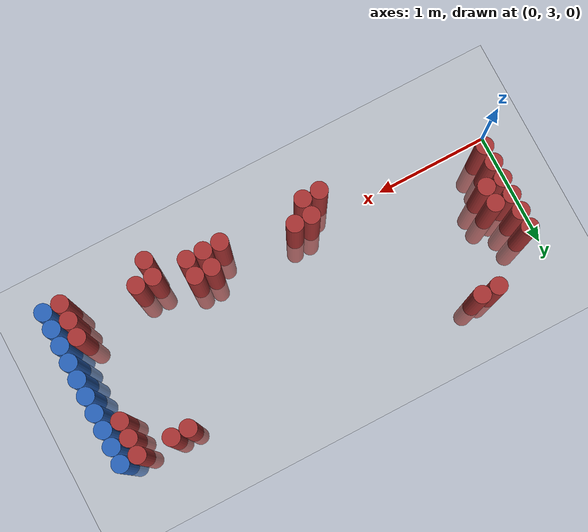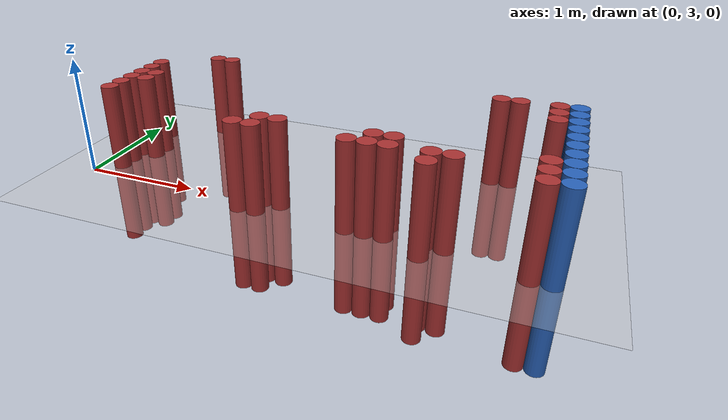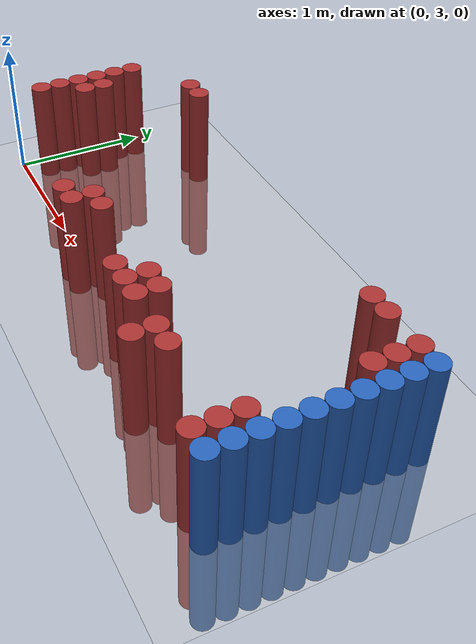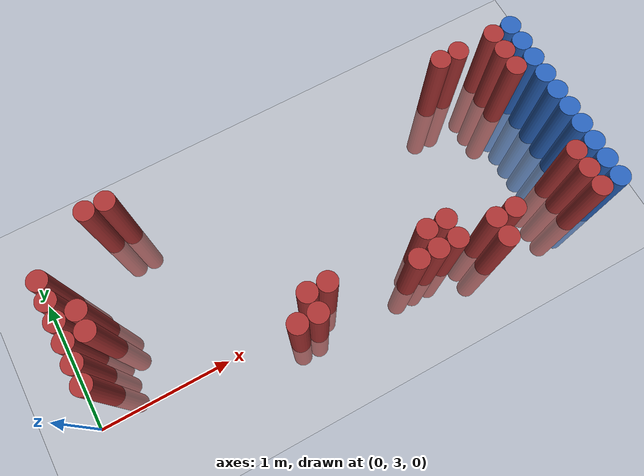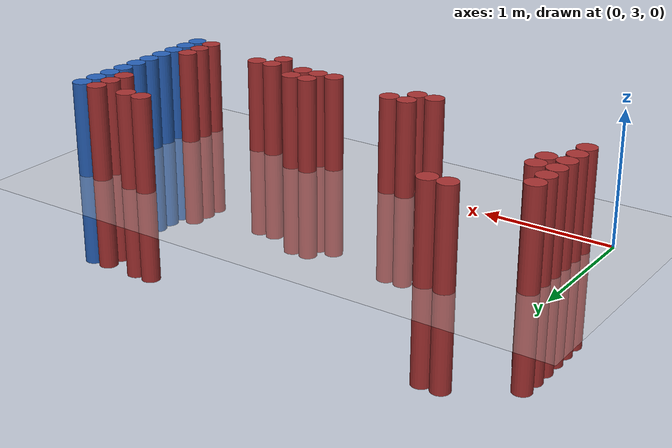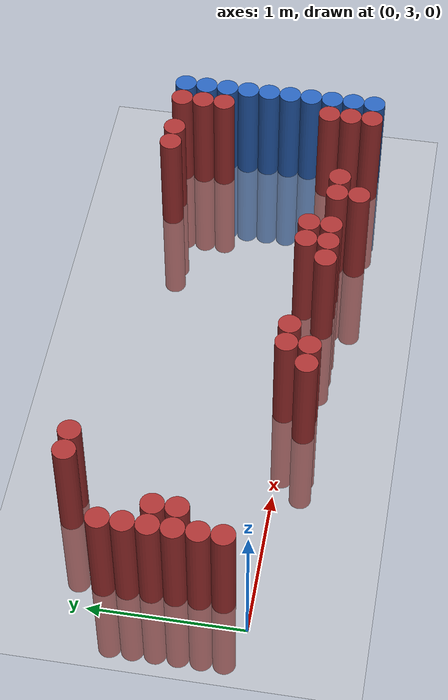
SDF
<sdf version="1.6">
 <world name="default">
  <model name="ground_plane">
   <static>1</static>
   <link name="link">
    <collision name="collision">
     <geometry><plane><normal>0 0 1</normal><size>100 100</size></plane></geometry>
     <surface><friction><ode><mu>100</mu><mu2>50</mu2></ode></friction></surface>
    </collision>
    <visual name="visual">
     <cast_shadows>0</cast_shadows>
     <geometry><plane><normal>0 0 1</normal><size>100 100</size></plane></geometry>
     <material>
      <script><uri>file://media/materials/scripts/gazebo.material</uri><name>Gazebo/Grey</name></script>
     </material>
    </visual>
   </link>
  </model>
  <model name="unit_cylinder_150">
   <static>1</static>
   <pose>3.925000 2.725000 0.000000 0.000000 0.000000 0.000000</pose>
   <link name="link">
    <inertial>
     <mass>1</mass>
     <inertia><ixx>0.145833</ixx><ixy>0</ixy><ixz>0</ixz><iyy>0.145833</iyy><iyz>0</iyz><izz>0.125</izz></inertia>
    </inertial>
    <collision name="collision">
     <geometry><cylinder><radius>0.075000</radius><length>1.5</length></cylinder></geometry>
    </collision>
    <visual name="visual">
     <geometry><cylinder><radius>0.075000</radius><length>1.5</length></cylinder></geometry>
     <material>
      <ambient>0.152000 0.379000 0.720000 1</ambient>
      <diffuse>0.152000 0.379000 0.720000 1</diffuse>
     </material>
     <material>
      <script><name>Gazebo/Grey</name><uri>file://media/materials/scripts/gazebo.material</uri></script>
     </material>
    </visual>
   </link>
  </model>
  <model name="unit_cylinder_152">
   <static>1</static>
   <pose>3.925000 2.875000 0.000000 0.000000 0.000000 0.000000</pose>
   <link name="link">
    <inertial>
     <mass>1</mass>
     <inertia><ixx>0.145833</ixx><ixy>0</ixy><ixz>0</ixz><iyy>0.145833</iyy><iyz>0</iyz><izz>0.125</izz></inertia>
    </inertial>
    <collision name="collision">
     <geometry><cylinder><radius>0.075000</radius><length>1.5</length></cylinder></geometry>
    </collision>
    <visual name="visual">
     <geometry><cylinder><radius>0.075000</radius><length>1.5</length></cylinder></geometry>
     <material>
      <ambient>0.152000 0.379000 0.720000 1</ambient>
      <diffuse>0.152000 0.379000 0.720000 1</diffuse>
     </material>
     <material>
      <script><name>Gazebo/Grey</name><uri>file://media/materials/scripts/gazebo.material</uri></script>
     </material>
    </visual>
   </link>
  </model>
  <model name="unit_cylinder_154">
   <static>1</static>
   <pose>3.925000 3.025000 0.000000 0.000000 0.000000 0.000000</pose>
   <link name="link">
    <inertial>
     <mass>1</mass>
     <inertia><ixx>0.145833</ixx><ixy>0</ixy><ixz>0</ixz><iyy>0.145833</iyy><iyz>0</iyz><izz>0.125</izz></inertia>
    </inertial>
    <collision name="collision">
     <geometry><cylinder><radius>0.075000</radius><length>1.5</length></cylinder></geometry>
    </collision>
    <visual name="visual">
     <geometry><cylinder><radius>0.075000</radius><length>1.5</length></cylinder></geometry>
     <material>
      <ambient>0.152000 0.379000 0.720000 1</ambient>
      <diffuse>0.152000 0.379000 0.720000 1</diffuse>
     </material>
     <material>
      <script><name>Gazebo/Grey</name><uri>file://media/materials/scripts/gazebo.material</uri></script>
     </material>
    </visual>
   </link>
  </model>
  <model name="unit_cylinder_156">
   <static>1</static>
   <pose>3.925000 3.175000 0.000000 0.000000 0.000000 0.000000</pose>
   <link name="link">
    <inertial>
     <mass>1</mass>
     <inertia><ixx>0.145833</ixx><ixy>0</ixy><ixz>0</ixz><iyy>0.145833</iyy><iyz>0</iyz><izz>0.125</izz></inertia>
    </inertial>
    <collision name="collision">
     <geometry><cylinder><radius>0.075000</radius><length>1.5</length></cylinder></geometry>
    </collision>
    <visual name="visual">
     <geometry><cylinder><radius>0.075000</radius><length>1.5</length></cylinder></geometry>
     <material>
      <ambient>0.152000 0.379000 0.720000 1</ambient>
      <diffuse>0.152000 0.379000 0.720000 1</diffuse>
     </material>
     <material>
      <script><name>Gazebo/Grey</name><uri>file://media/materials/scripts/gazebo.material</uri></script>
     </material>
    </visual>
   </link>
  </model>
  <model name="unit_cylinder_158">
   <static>1</static>
   <pose>3.925000 3.325000 0.000000 0.000000 0.000000 0.000000</pose>
   <link name="link">
    <inertial>
     <mass>1</mass>
     <inertia><ixx>0.145833</ixx><ixy>0</ixy><ixz>0</ixz><iyy>0.145833</iyy><iyz>0</iyz><izz>0.125</izz></inertia>
    </inertial>
    <collision name="collision">
     <geometry><cylinder><radius>0.075000</radius><length>1.5</length></cylinder></geometry>
    </collision>
    <visual name="visual">
     <geometry><cylinder><radius>0.075000</radius><length>1.5</length></cylinder></geometry>
     <material>
      <ambient>0.152000 0.379000 0.720000 1</ambient>
      <diffuse>0.152000 0.379000 0.720000 1</diffuse>
     </material>
     <material>
      <script><name>Gazebo/Grey</name><uri>file://media/materials/scripts/gazebo.material</uri></script>
     </material>
    </visual>
   </link>
  </model>
  <model name="unit_cylinder_160">
   <static>1</static>
   <pose>3.925000 3.475000 0.000000 0.000000 0.000000 0.000000</pose>
   <link name="link">
    <inertial>
     <mass>1</mass>
     <inertia><ixx>0.145833</ixx><ixy>0</ixy><ixz>0</ixz><iyy>0.145833</iyy><iyz>0</iyz><izz>0.125</izz></inertia>
    </inertial>
    <collision name="collision">
     <geometry><cylinder><radius>0.075000</radius><length>1.5</length></cylinder></geometry>
    </collision>
    <visual name="visual">
     <geometry><cylinder><radius>0.075000</radius><length>1.5</length></cylinder></geometry>
     <material>
      <ambient>0.152000 0.379000 0.720000 1</ambient>
      <diffuse>0.152000 0.379000 0.720000 1</diffuse>
     </material>
     <material>
      <script><name>Gazebo/Grey</name><uri>file://media/materials/scripts/gazebo.material</uri></script>
     </material>
    </visual>
   </link>
  </model>
  <model name="unit_cylinder_162">
   <static>1</static>
   <pose>3.925000 3.625000 0.000000 0.000000 0.000000 0.000000</pose>
   <link name="link">
    <inertial>
     <mass>1</mass>
     <inertia><ixx>0.145833</ixx><ixy>0</ixy><ixz>0</ixz><iyy>0.145833</iyy><iyz>0</iyz><izz>0.125</izz></inertia>
    </inertial>
    <collision name="collision">
     <geometry><cylinder><radius>0.075000</radius><length>1.5</length></cylinder></geometry>
    </collision>
    <visual name="visual">
     <geometry><cylinder><radius>0.075000</radius><length>1.5</length></cylinder></geometry>
     <material>
      <ambient>0.152000 0.379000 0.720000 1</ambient>
      <diffuse>0.152000 0.379000 0.720000 1</diffuse>
     </material>
     <material>
      <script><name>Gazebo/Grey</name><uri>file://media/materials/scripts/gazebo.material</uri></script>
     </material>
    </visual>
   </link>
  </model>
  <model name="unit_cylinder_164">
   <static>1</static>
   <pose>3.925000 3.775000 0.000000 0.000000 0.000000 0.000000</pose>
   <link name="link">
    <inertial>
     <mass>1</mass>
     <inertia><ixx>0.145833</ixx><ixy>0</ixy><ixz>0</ixz><iyy>0.145833</iyy><iyz>0</iyz><izz>0.125</izz></inertia>
    </inertial>
    <collision name="collision">
     <geometry><cylinder><radius>0.075000</radius><length>1.5</length></cylinder></geometry>
    </collision>
    <visual name="visual">
     <geometry><cylinder><radius>0.075000</radius><length>1.5</length></cylinder></geometry>
     <material>
      <ambient>0.152000 0.379000 0.720000 1</ambient>
      <diffuse>0.152000 0.379000 0.720000 1</diffuse>
     </material>
     <material>
      <script><name>Gazebo/Grey</name><uri>file://media/materials/scripts/gazebo.material</uri></script>
     </material>
    </visual>
   </link>
  </model>
  <model name="unit_cylinder_166">
   <static>1</static>
   <pose>3.925000 3.925000 0.000000 0.000000 0.000000 0.000000</pose>
   <link name="link">
    <inertial>
     <mass>1</mass>
     <inertia><ixx>0.145833</ixx><ixy>0</ixy><ixz>0</ixz><iyy>0.145833</iyy><iyz>0</iyz><izz>0.125</izz></inertia>
    </inertial>
    <collision name="collision">
     <geometry><cylinder><radius>0.075000</radius><length>1.5</length></cylinder></geometry>
    </collision>
    <visual name="visual">
     <geometry><cylinder><radius>0.075000</radius><length>1.5</length></cylinder></geometry>
     <material>
      <ambient>0.152000 0.379000 0.720000 1</ambient>
      <diffuse>0.152000 0.379000 0.720000 1</diffuse>
     </material>
     <material>
      <script><name>Gazebo/Grey</name><uri>file://media/materials/scripts/gazebo.material</uri></script>
     </material>
    </visual>
   </link>
  </model>
  <model name="unit_cylinder_168">
   <static>1</static>
   <pose>3.925000 4.075000 0.000000 0.000000 0.000000 0.000000</pose>
   <link name="link">
    <inertial>
     <mass>1</mass>
     <inertia><ixx>0.145833</ixx><ixy>0</ixy><ixz>0</ixz><iyy>0.145833</iyy><iyz>0</iyz><izz>0.125</izz></inertia>
    </inertial>
    <collision name="collision">
     <geometry><cylinder><radius>0.075000</radius><length>1.5</length></cylinder></geometry>
    </collision>
    <visual name="visual">
     <geometry><cylinder><radius>0.075000</radius><length>1.5</length></cylinder></geometry>
     <material>
      <ambient>0.152000 0.379000 0.720000 1</ambient>
      <diffuse>0.152000 0.379000 0.720000 1</diffuse>
     </material>
     <material>
      <script><name>Gazebo/Grey</name><uri>file://media/materials/scripts/gazebo.material</uri></script>
     </material>
    </visual>
   </link>
  </model>
  <model name="unit_cylinder_412">
   <static>1</static>
   <pose>0.175000 3.175000 0.000000 0.000000 0.000000 0.000000</pose>
   <link name="link">
    <inertial>
     <mass>1</mass>
     <inertia><ixx>0.145833</ixx><ixy>0</ixy><ixz>0</ixz><iyy>0.145833</iyy><iyz>0</iyz><izz>0.125</izz></inertia>
    </inertial>
    <collision name="collision">
     <geometry><cylinder><radius>0.075000</radius><length>1.5</length></cylinder></geometry>
    </collision>
    <visual name="visual">
     <geometry><cylinder><radius>0.075000</radius><length>1.5</length></cylinder></geometry>
     <material>
      <ambient>0.648000 0.192000 0.192000 1</ambient>
      <diffuse>0.648000 0.192000 0.192000 1</diffuse>
     </material>
     <material>
      <script><name>Gazebo/Grey</name><uri>file://media/materials/scripts/gazebo.material</uri></script>
     </material>
    </visual>
   </link>
  </model>
  <model name="unit_cylinder_413">
   <static>1</static>
   <pose>0.175000 3.325000 0.000000 0.000000 0.000000 0.000000</pose>
   <link name="link">
    <inertial>
     <mass>1</mass>
     <inertia><ixx>0.145833</ixx><ixy>0</ixy><ixz>0</ixz><iyy>0.145833</iyy><iyz>0</iyz><izz>0.125</izz></inertia>
    </inertial>
    <collision name="collision">
     <geometry><cylinder><radius>0.075000</radius><length>1.5</length></cylinder></geometry>
    </collision>
    <visual name="visual">
     <geometry><cylinder><radius>0.075000</radius><length>1.5</length></cylinder></geometry>
     <material>
      <ambient>0.648000 0.192000 0.192000 1</ambient>
      <diffuse>0.648000 0.192000 0.192000 1</diffuse>
     </material>
     <material>
      <script><name>Gazebo/Grey</name><uri>file://media/materials/scripts/gazebo.material</uri></script>
     </material>
    </visual>
   </link>
  </model>
  <model name="unit_cylinder_414">
   <static>1</static>
   <pose>0.175000 3.475000 0.000000 0.000000 0.000000 0.000000</pose>
   <link name="link">
    <inertial>
     <mass>1</mass>
     <inertia><ixx>0.145833</ixx><ixy>0</ixy><ixz>0</ixz><iyy>0.145833</iyy><iyz>0</iyz><izz>0.125</izz></inertia>
    </inertial>
    <collision name="collision">
     <geometry><cylinder><radius>0.075000</radius><length>1.5</length></cylinder></geometry>
    </collision>
    <visual name="visual">
     <geometry><cylinder><radius>0.075000</radius><length>1.5</length></cylinder></geometry>
     <material>
      <ambient>0.648000 0.192000 0.192000 1</ambient>
      <diffuse>0.648000 0.192000 0.192000 1</diffuse>
     </material>
     <material>
      <script><name>Gazebo/Grey</name><uri>file://media/materials/scripts/gazebo.material</uri></script>
     </material>
    </visual>
   </link>
  </model>
  <model name="unit_cylinder_415">
   <static>1</static>
   <pose>0.175000 3.625000 0.000000 0.000000 0.000000 0.000000</pose>
   <link name="link">
    <inertial>
     <mass>1</mass>
     <inertia><ixx>0.145833</ixx><ixy>0</ixy><ixz>0</ixz><iyy>0.145833</iyy><iyz>0</iyz><izz>0.125</izz></inertia>
    </inertial>
    <collision name="collision">
     <geometry><cylinder><radius>0.075000</radius><length>1.5</length></cylinder></geometry>
    </collision>
    <visual name="visual">
     <geometry><cylinder><radius>0.075000</radius><length>1.5</length></cylinder></geometry>
     <material>
      <ambient>0.648000 0.192000 0.192000 1</ambient>
      <diffuse>0.648000 0.192000 0.192000 1</diffuse>
     </material>
     <material>
      <script><name>Gazebo/Grey</name><uri>file://media/materials/scripts/gazebo.material</uri></script>
     </material>
    </visual>
   </link>
  </model>
  <model name="unit_cylinder_416">
   <static>1</static>
   <pose>0.175000 3.775000 0.000000 0.000000 0.000000 0.000000</pose>
   <link name="link">
    <inertial>
     <mass>1</mass>
     <inertia><ixx>0.145833</ixx><ixy>0</ixy><ixz>0</ixz><iyy>0.145833</iyy><iyz>0</iyz><izz>0.125</izz></inertia>
    </inertial>
    <collision name="collision">
     <geometry><cylinder><radius>0.075000</radius><length>1.5</length></cylinder></geometry>
    </collision>
    <visual name="visual">
     <geometry><cylinder><radius>0.075000</radius><length>1.5</length></cylinder></geometry>
     <material>
      <ambient>0.648000 0.192000 0.192000 1</ambient>
      <diffuse>0.648000 0.192000 0.192000 1</diffuse>
     </material>
     <material>
      <script><name>Gazebo/Grey</name><uri>file://media/materials/scripts/gazebo.material</uri></script>
     </material>
    </visual>
   </link>
  </model>
  <model name="unit_cylinder_417">
   <static>1</static>
   <pose>0.175000 3.925000 0.000000 0.000000 0.000000 0.000000</pose>
   <link name="link">
    <inertial>
     <mass>1</mass>
     <inertia><ixx>0.145833</ixx><ixy>0</ixy><ixz>0</ixz><iyy>0.145833</iyy><iyz>0</iyz><izz>0.125</izz></inertia>
    </inertial>
    <collision name="collision">
     <geometry><cylinder><radius>0.075000</radius><length>1.5</length></cylinder></geometry>
    </collision>
    <visual name="visual">
     <geometry><cylinder><radius>0.075000</radius><length>1.5</length></cylinder></geometry>
     <material>
      <ambient>0.648000 0.192000 0.192000 1</ambient>
      <diffuse>0.648000 0.192000 0.192000 1</diffuse>
     </material>
     <material>
      <script><name>Gazebo/Grey</name><uri>file://media/materials/scripts/gazebo.material</uri></script>
     </material>
    </visual>
   </link>
  </model>
  <model name="unit_cylinder_423">
   <static>1</static>
   <pose>0.325000 3.475000 0.000000 0.000000 0.000000 0.000000</pose>
   <link name="link">
    <inertial>
     <mass>1</mass>
     <inertia><ixx>0.145833</ixx><ixy>0</ixy><ixz>0</ixz><iyy>0.145833</iyy><iyz>0</iyz><izz>0.125</izz></inertia>
    </inertial>
    <collision name="collision">
     <geometry><cylinder><radius>0.075000</radius><length>1.5</length></cylinder></geometry>
    </collision>
    <visual name="visual">
     <geometry><cylinder><radius>0.075000</radius><length>1.5</length></cylinder></geometry>
     <material>
      <ambient>0.648000 0.192000 0.192000 1</ambient>
      <diffuse>0.648000 0.192000 0.192000 1</diffuse>
     </material>
     <material>
      <script><name>Gazebo/Grey</name><uri>file://media/materials/scripts/gazebo.material</uri></script>
     </material>
    </visual>
   </link>
  </model>
  <model name="unit_cylinder_424">
   <static>1</static>
   <pose>0.325000 3.625000 0.000000 0.000000 0.000000 0.000000</pose>
   <link name="link">
    <inertial>
     <mass>1</mass>
     <inertia><ixx>0.145833</ixx><ixy>0</ixy><ixz>0</ixz><iyy>0.145833</iyy><iyz>0</iyz><izz>0.125</izz></inertia>
    </inertial>
    <collision name="collision">
     <geometry><cylinder><radius>0.075000</radius><length>1.5</length></cylinder></geometry>
    </collision>
    <visual name="visual">
     <geometry><cylinder><radius>0.075000</radius><length>1.5</length></cylinder></geometry>
     <material>
      <ambient>0.648000 0.192000 0.192000 1</ambient>
      <diffuse>0.648000 0.192000 0.192000 1</diffuse>
     </material>
     <material>
      <script><name>Gazebo/Grey</name><uri>file://media/materials/scripts/gazebo.material</uri></script>
     </material>
    </visual>
   </link>
  </model>
  <model name="unit_cylinder_432">
   <static>1</static>
   <pose>0.625000 4.225000 0.000000 0.000000 0.000000 0.000000</pose>
   <link name="link">
    <inertial>
     <mass>1</mass>
     <inertia><ixx>0.145833</ixx><ixy>0</ixy><ixz>0</ixz><iyy>0.145833</iyy><iyz>0</iyz><izz>0.125</izz></inertia>
    </inertial>
    <collision name="collision">
     <geometry><cylinder><radius>0.075000</radius><length>1.5</length></cylinder></geometry>
    </collision>
    <visual name="visual">
     <geometry><cylinder><radius>0.075000</radius><length>1.5</length></cylinder></geometry>
     <material>
      <ambient>0.648000 0.192000 0.192000 1</ambient>
      <diffuse>0.648000 0.192000 0.192000 1</diffuse>
     </material>
     <material>
      <script><name>Gazebo/Grey</name><uri>file://media/materials/scripts/gazebo.material</uri></script>
     </material>
    </visual>
   </link>
  </model>
  <model name="unit_cylinder_436">
   <static>1</static>
   <pose>0.775000 4.225000 0.000000 0.000000 0.000000 0.000000</pose>
   <link name="link">
    <inertial>
     <mass>1</mass>
     <inertia><ixx>0.145833</ixx><ixy>0</ixy><ixz>0</ixz><iyy>0.145833</iyy><iyz>0</iyz><izz>0.125</izz></inertia>
    </inertial>
    <collision name="collision">
     <geometry><cylinder><radius>0.075000</radius><length>1.5</length></cylinder></geometry>
    </collision>
    <visual name="visual">
     <geometry><cylinder><radius>0.075000</radius><length>1.5</length></cylinder></geometry>
     <material>
      <ambient>0.648000 0.192000 0.192000 1</ambient>
      <diffuse>0.648000 0.192000 0.192000 1</diffuse>
     </material>
     <material>
      <script><name>Gazebo/Grey</name><uri>file://media/materials/scripts/gazebo.material</uri></script>
     </material>
    </visual>
   </link>
  </model>
  <model name="unit_cylinder_471">
   <static>1</static>
   <pose>1.525000 2.875000 0.000000 0.000000 0.000000 0.000000</pose>
   <link name="link">
    <inertial>
     <mass>1</mass>
     <inertia><ixx>0.145833</ixx><ixy>0</ixy><ixz>0</ixz><iyy>0.145833</iyy><iyz>0</iyz><izz>0.125</izz></inertia>
    </inertial>
    <collision name="collision">
     <geometry><cylinder><radius>0.075000</radius><length>1.5</length></cylinder></geometry>
    </collision>
    <visual name="visual">
     <geometry><cylinder><radius>0.075000</radius><length>1.5</length></cylinder></geometry>
     <material>
      <ambient>0.648000 0.192000 0.192000 1</ambient>
      <diffuse>0.648000 0.192000 0.192000 1</diffuse>
     </material>
     <material>
      <script><name>Gazebo/Grey</name><uri>file://media/materials/scripts/gazebo.material</uri></script>
     </material>
    </visual>
   </link>
  </model>
  <model name="unit_cylinder_477">
   <static>1</static>
   <pose>1.675000 2.875000 0.000000 0.000000 0.000000 0.000000</pose>
   <link name="link">
    <inertial>
     <mass>1</mass>
     <inertia><ixx>0.145833</ixx><ixy>0</ixy><ixz>0</ixz><iyy>0.145833</iyy><iyz>0</iyz><izz>0.125</izz></inertia>
    </inertial>
    <collision name="collision">
     <geometry><cylinder><radius>0.075000</radius><length>1.5</length></cylinder></geometry>
    </collision>
    <visual name="visual">
     <geometry><cylinder><radius>0.075000</radius><length>1.5</length></cylinder></geometry>
     <material>
      <ambient>0.648000 0.192000 0.192000 1</ambient>
      <diffuse>0.648000 0.192000 0.192000 1</diffuse>
     </material>
     <material>
      <script><name>Gazebo/Grey</name><uri>file://media/materials/scripts/gazebo.material</uri></script>
     </material>
    </visual>
   </link>
  </model>
  <model name="unit_cylinder_478">
   <static>1</static>
   <pose>1.675000 3.025000 0.000000 0.000000 0.000000 0.000000</pose>
   <link name="link">
    <inertial>
     <mass>1</mass>
     <inertia><ixx>0.145833</ixx><ixy>0</ixy><ixz>0</ixz><iyy>0.145833</iyy><iyz>0</iyz><izz>0.125</izz></inertia>
    </inertial>
    <collision name="collision">
     <geometry><cylinder><radius>0.075000</radius><length>1.5</length></cylinder></geometry>
    </collision>
    <visual name="visual">
     <geometry><cylinder><radius>0.075000</radius><length>1.5</length></cylinder></geometry>
     <material>
      <ambient>0.648000 0.192000 0.192000 1</ambient>
      <diffuse>0.648000 0.192000 0.192000 1</diffuse>
     </material>
     <material>
      <script><name>Gazebo/Grey</name><uri>file://media/materials/scripts/gazebo.material</uri></script>
     </material>
    </visual>
   </link>
  </model>
  <model name="unit_cylinder_482">
   <static>1</static>
   <pose>1.825000 3.025000 0.000000 0.000000 0.000000 0.000000</pose>
   <link name="link">
    <inertial>
     <mass>1</mass>
     <inertia><ixx>0.145833</ixx><ixy>0</ixy><ixz>0</ixz><iyy>0.145833</iyy><iyz>0</iyz><izz>0.125</izz></inertia>
    </inertial>
    <collision name="collision">
     <geometry><cylinder><radius>0.075000</radius><length>1.5</length></cylinder></geometry>
    </collision>
    <visual name="visual">
     <geometry><cylinder><radius>0.075000</radius><length>1.5</length></cylinder></geometry>
     <material>
      <ambient>0.648000 0.192000 0.192000 1</ambient>
      <diffuse>0.648000 0.192000 0.192000 1</diffuse>
     </material>
     <material>
      <script><name>Gazebo/Grey</name><uri>file://media/materials/scripts/gazebo.material</uri></script>
     </material>
    </visual>
   </link>
  </model>
  <model name="unit_cylinder_502">
   <static>1</static>
   <pose>2.425000 2.875000 0.000000 0.000000 0.000000 0.000000</pose>
   <link name="link">
    <inertial>
     <mass>1</mass>
     <inertia><ixx>0.145833</ixx><ixy>0</ixy><ixz>0</ixz><iyy>0.145833</iyy><iyz>0</iyz><izz>0.125</izz></inertia>
    </inertial>
    <collision name="collision">
     <geometry><cylinder><radius>0.075000</radius><length>1.5</length></cylinder></geometry>
    </collision>
    <visual name="visual">
     <geometry><cylinder><radius>0.075000</radius><length>1.5</length></cylinder></geometry>
     <material>
      <ambient>0.648000 0.192000 0.192000 1</ambient>
      <diffuse>0.648000 0.192000 0.192000 1</diffuse>
     </material>
     <material>
      <script><name>Gazebo/Grey</name><uri>file://media/materials/scripts/gazebo.material</uri></script>
     </material>
    </visual>
   </link>
  </model>
  <model name="unit_cylinder_510">
   <static>1</static>
   <pose>2.575000 2.875000 0.000000 0.000000 0.000000 0.000000</pose>
   <link name="link">
    <inertial>
     <mass>1</mass>
     <inertia><ixx>0.145833</ixx><ixy>0</ixy><ixz>0</ixz><iyy>0.145833</iyy><iyz>0</iyz><izz>0.125</izz></inertia>
    </inertial>
    <collision name="collision">
     <geometry><cylinder><radius>0.075000</radius><length>1.5</length></cylinder></geometry>
    </collision>
    <visual name="visual">
     <geometry><cylinder><radius>0.075000</radius><length>1.5</length></cylinder></geometry>
     <material>
      <ambient>0.648000 0.192000 0.192000 1</ambient>
      <diffuse>0.648000 0.192000 0.192000 1</diffuse>
     </material>
     <material>
      <script><name>Gazebo/Grey</name><uri>file://media/materials/scripts/gazebo.material</uri></script>
     </material>
    </visual>
   </link>
  </model>
  <model name="unit_cylinder_511">
   <static>1</static>
   <pose>2.575000 3.025000 0.000000 0.000000 0.000000 0.000000</pose>
   <link name="link">
    <inertial>
     <mass>1</mass>
     <inertia><ixx>0.145833</ixx><ixy>0</ixy><ixz>0</ixz><iyy>0.145833</iyy><iyz>0</iyz><izz>0.125</izz></inertia>
    </inertial>
    <collision name="collision">
     <geometry><cylinder><radius>0.075000</radius><length>1.5</length></cylinder></geometry>
    </collision>
    <visual name="visual">
     <geometry><cylinder><radius>0.075000</radius><length>1.5</length></cylinder></geometry>
     <material>
      <ambient>0.648000 0.192000 0.192000 1</ambient>
      <diffuse>0.648000 0.192000 0.192000 1</diffuse>
     </material>
     <material>
      <script><name>Gazebo/Grey</name><uri>file://media/materials/scripts/gazebo.material</uri></script>
     </material>
    </visual>
   </link>
  </model>
  <model name="unit_cylinder_519">
   <static>1</static>
   <pose>2.725000 2.875000 0.000000 0.000000 0.000000 0.000000</pose>
   <link name="link">
    <inertial>
     <mass>1</mass>
     <inertia><ixx>0.145833</ixx><ixy>0</ixy><ixz>0</ixz><iyy>0.145833</iyy><iyz>0</iyz><izz>0.125</izz></inertia>
    </inertial>
    <collision name="collision">
     <geometry><cylinder><radius>0.075000</radius><length>1.5</length></cylinder></geometry>
    </collision>
    <visual name="visual">
     <geometry><cylinder><radius>0.075000</radius><length>1.5</length></cylinder></geometry>
     <material>
      <ambient>0.648000 0.192000 0.192000 1</ambient>
      <diffuse>0.648000 0.192000 0.192000 1</diffuse>
     </material>
     <material>
      <script><name>Gazebo/Grey</name><uri>file://media/materials/scripts/gazebo.material</uri></script>
     </material>
    </visual>
   </link>
  </model>
  <model name="unit_cylinder_520">
   <static>1</static>
   <pose>2.725000 3.025000 0.000000 0.000000 0.000000 0.000000</pose>
   <link name="link">
    <inertial>
     <mass>1</mass>
     <inertia><ixx>0.145833</ixx><ixy>0</ixy><ixz>0</ixz><iyy>0.145833</iyy><iyz>0</iyz><izz>0.125</izz></inertia>
    </inertial>
    <collision name="collision">
     <geometry><cylinder><radius>0.075000</radius><length>1.5</length></cylinder></geometry>
    </collision>
    <visual name="visual">
     <geometry><cylinder><radius>0.075000</radius><length>1.5</length></cylinder></geometry>
     <material>
      <ambient>0.648000 0.192000 0.192000 1</ambient>
      <diffuse>0.648000 0.192000 0.192000 1</diffuse>
     </material>
     <material>
      <script><name>Gazebo/Grey</name><uri>file://media/materials/scripts/gazebo.material</uri></script>
     </material>
    </visual>
   </link>
  </model>
  <model name="unit_cylinder_535">
   <static>1</static>
   <pose>3.025000 2.725000 0.000000 0.000000 0.000000 0.000000</pose>
   <link name="link">
    <inertial>
     <mass>1</mass>
     <inertia><ixx>0.145833</ixx><ixy>0</ixy><ixz>0</ixz><iyy>0.145833</iyy><iyz>0</iyz><izz>0.125</izz></inertia>
    </inertial>
    <collision name="collision">
     <geometry><cylinder><radius>0.075000</radius><length>1.5</length></cylinder></geometry>
    </collision>
    <visual name="visual">
     <geometry><cylinder><radius>0.075000</radius><length>1.5</length></cylinder></geometry>
     <material>
      <ambient>0.648000 0.192000 0.192000 1</ambient>
      <diffuse>0.648000 0.192000 0.192000 1</diffuse>
     </material>
     <material>
      <script><name>Gazebo/Grey</name><uri>file://media/materials/scripts/gazebo.material</uri></script>
     </material>
    </visual>
   </link>
  </model>
  <model name="unit_cylinder_536">
   <static>1</static>
   <pose>3.025000 2.875000 0.000000 0.000000 0.000000 0.000000</pose>
   <link name="link">
    <inertial>
     <mass>1</mass>
     <inertia><ixx>0.145833</ixx><ixy>0</ixy><ixz>0</ixz><iyy>0.145833</iyy><iyz>0</iyz><izz>0.125</izz></inertia>
    </inertial>
    <collision name="collision">
     <geometry><cylinder><radius>0.075000</radius><length>1.5</length></cylinder></geometry>
    </collision>
    <visual name="visual">
     <geometry><cylinder><radius>0.075000</radius><length>1.5</length></cylinder></geometry>
     <material>
      <ambient>0.648000 0.192000 0.192000 1</ambient>
      <diffuse>0.648000 0.192000 0.192000 1</diffuse>
     </material>
     <material>
      <script><name>Gazebo/Grey</name><uri>file://media/materials/scripts/gazebo.material</uri></script>
     </material>
    </visual>
   </link>
  </model>
  <model name="unit_cylinder_545">
   <static>1</static>
   <pose>3.175000 2.875000 0.000000 0.000000 0.000000 0.000000</pose>
   <link name="link">
    <inertial>
     <mass>1</mass>
     <inertia><ixx>0.145833</ixx><ixy>0</ixy><ixz>0</ixz><iyy>0.145833</iyy><iyz>0</iyz><izz>0.125</izz></inertia>
    </inertial>
    <collision name="collision">
     <geometry><cylinder><radius>0.075000</radius><length>1.5</length></cylinder></geometry>
    </collision>
    <visual name="visual">
     <geometry><cylinder><radius>0.075000</radius><length>1.5</length></cylinder></geometry>
     <material>
      <ambient>0.648000 0.192000 0.192000 1</ambient>
      <diffuse>0.648000 0.192000 0.192000 1</diffuse>
     </material>
     <material>
      <script><name>Gazebo/Grey</name><uri>file://media/materials/scripts/gazebo.material</uri></script>
     </material>
    </visual>
   </link>
  </model>
  <model name="unit_cylinder_555">
   <static>1</static>
   <pose>3.325000 4.075000 0.000000 0.000000 0.000000 0.000000</pose>
   <link name="link">
    <inertial>
     <mass>1</mass>
     <inertia><ixx>0.145833</ixx><ixy>0</ixy><ixz>0</ixz><iyy>0.145833</iyy><iyz>0</iyz><izz>0.125</izz></inertia>
    </inertial>
    <collision name="collision">
     <geometry><cylinder><radius>0.075000</radius><length>1.5</length></cylinder></geometry>
    </collision>
    <visual name="visual">
     <geometry><cylinder><radius>0.075000</radius><length>1.5</length></cylinder></geometry>
     <material>
      <ambient>0.648000 0.192000 0.192000 1</ambient>
      <diffuse>0.648000 0.192000 0.192000 1</diffuse>
     </material>
     <material>
      <script><name>Gazebo/Grey</name><uri>file://media/materials/scripts/gazebo.material</uri></script>
     </material>
    </visual>
   </link>
  </model>
  <model name="unit_cylinder_566">
   <static>1</static>
   <pose>3.475000 4.075000 0.000000 0.000000 0.000000 0.000000</pose>
   <link name="link">
    <inertial>
     <mass>1</mass>
     <inertia><ixx>0.145833</ixx><ixy>0</ixy><ixz>0</ixz><iyy>0.145833</iyy><iyz>0</iyz><izz>0.125</izz></inertia>
    </inertial>
    <collision name="collision">
     <geometry><cylinder><radius>0.075000</radius><length>1.5</length></cylinder></geometry>
    </collision>
    <visual name="visual">
     <geometry><cylinder><radius>0.075000</radius><length>1.5</length></cylinder></geometry>
     <material>
      <ambient>0.648000 0.192000 0.192000 1</ambient>
      <diffuse>0.648000 0.192000 0.192000 1</diffuse>
     </material>
     <material>
      <script><name>Gazebo/Grey</name><uri>file://media/materials/scripts/gazebo.material</uri></script>
     </material>
    </visual>
   </link>
  </model>
  <model name="unit_cylinder_594">
   <static>1</static>
   <pose>3.775000 2.725000 0.000000 0.000000 0.000000 0.000000</pose>
   <link name="link">
    <inertial>
     <mass>1</mass>
     <inertia><ixx>0.145833</ixx><ixy>0</ixy><ixz>0</ixz><iyy>0.145833</iyy><iyz>0</iyz><izz>0.125</izz></inertia>
    </inertial>
    <collision name="collision">
     <geometry><cylinder><radius>0.075000</radius><length>1.5</length></cylinder></geometry>
    </collision>
    <visual name="visual">
     <geometry><cylinder><radius>0.075000</radius><length>1.5</length></cylinder></geometry>
     <material>
      <ambient>0.648000 0.192000 0.192000 1</ambient>
      <diffuse>0.648000 0.192000 0.192000 1</diffuse>
     </material>
     <material>
      <script><name>Gazebo/Grey</name><uri>file://media/materials/scripts/gazebo.material</uri></script>
     </material>
    </visual>
   </link>
  </model>
  <model name="unit_cylinder_595">
   <static>1</static>
   <pose>3.775000 2.875000 0.000000 0.000000 0.000000 0.000000</pose>
   <link name="link">
    <inertial>
     <mass>1</mass>
     <inertia><ixx>0.145833</ixx><ixy>0</ixy><ixz>0</ixz><iyy>0.145833</iyy><iyz>0</iyz><izz>0.125</izz></inertia>
    </inertial>
    <collision name="collision">
     <geometry><cylinder><radius>0.075000</radius><length>1.5</length></cylinder></geometry>
    </collision>
    <visual name="visual">
     <geometry><cylinder><radius>0.075000</radius><length>1.5</length></cylinder></geometry>
     <material>
      <ambient>0.648000 0.192000 0.192000 1</ambient>
      <diffuse>0.648000 0.192000 0.192000 1</diffuse>
     </material>
     <material>
      <script><name>Gazebo/Grey</name><uri>file://media/materials/scripts/gazebo.material</uri></script>
     </material>
    </visual>
   </link>
  </model>
  <model name="unit_cylinder_596">
   <static>1</static>
   <pose>3.775000 3.025000 0.000000 0.000000 0.000000 0.000000</pose>
   <link name="link">
    <inertial>
     <mass>1</mass>
     <inertia><ixx>0.145833</ixx><ixy>0</ixy><ixz>0</ixz><iyy>0.145833</iyy><iyz>0</iyz><izz>0.125</izz></inertia>
    </inertial>
    <collision name="collision">
     <geometry><cylinder><radius>0.075000</radius><length>1.5</length></cylinder></geometry>
    </collision>
    <visual name="visual">
     <geometry><cylinder><radius>0.075000</radius><length>1.5</length></cylinder></geometry>
     <material>
      <ambient>0.648000 0.192000 0.192000 1</ambient>
      <diffuse>0.648000 0.192000 0.192000 1</diffuse>
     </material>
     <material>
      <script><name>Gazebo/Grey</name><uri>file://media/materials/scripts/gazebo.material</uri></script>
     </material>
    </visual>
   </link>
  </model>
  <model name="unit_cylinder_597">
   <static>1</static>
   <pose>3.775000 3.775000 0.000000 0.000000 0.000000 0.000000</pose>
   <link name="link">
    <inertial>
     <mass>1</mass>
     <inertia><ixx>0.145833</ixx><ixy>0</ixy><ixz>0</ixz><iyy>0.145833</iyy><iyz>0</iyz><izz>0.125</izz></inertia>
    </inertial>
    <collision name="collision">
     <geometry><cylinder><radius>0.075000</radius><length>1.5</length></cylinder></geometry>
    </collision>
    <visual name="visual">
     <geometry><cylinder><radius>0.075000</radius><length>1.5</length></cylinder></geometry>
     <material>
      <ambient>0.648000 0.192000 0.192000 1</ambient>
      <diffuse>0.648000 0.192000 0.192000 1</diffuse>
     </material>
     <material>
      <script><name>Gazebo/Grey</name><uri>file://media/materials/scripts/gazebo.material</uri></script>
     </material>
    </visual>
   </link>
  </model>
  <model name="unit_cylinder_598">
   <static>1</static>
   <pose>3.775000 3.925000 0.000000 0.000000 0.000000 0.000000</pose>
   <link name="link">
    <inertial>
     <mass>1</mass>
     <inertia><ixx>0.145833</ixx><ixy>0</ixy><ixz>0</ixz><iyy>0.145833</iyy><iyz>0</iyz><izz>0.125</izz></inertia>
    </inertial>
    <collision name="collision">
     <geometry><cylinder><radius>0.075000</radius><length>1.5</length></cylinder></geometry>
    </collision>
    <visual name="visual">
     <geometry><cylinder><radius>0.075000</radius><length>1.5</length></cylinder></geometry>
     <material>
      <ambient>0.648000 0.192000 0.192000 1</ambient>
      <diffuse>0.648000 0.192000 0.192000 1</diffuse>
     </material>
     <material>
      <script><name>Gazebo/Grey</name><uri>file://media/materials/scripts/gazebo.material</uri></script>
     </material>
    </visual>
   </link>
  </model>
  <model name="unit_cylinder_599">
   <static>1</static>
   <pose>3.775000 4.075000 0.000000 0.000000 0.000000 0.000000</pose>
   <link name="link">
    <inertial>
     <mass>1</mass>
     <inertia><ixx>0.145833</ixx><ixy>0</ixy><ixz>0</ixz><iyy>0.145833</iyy><iyz>0</iyz><izz>0.125</izz></inertia>
    </inertial>
    <collision name="collision">
     <geometry><cylinder><radius>0.075000</radius><length>1.5</length></cylinder></geometry>
    </collision>
    <visual name="visual">
     <geometry><cylinder><radius>0.075000</radius><length>1.5</length></cylinder></geometry>
     <material>
      <ambient>0.648000 0.192000 0.192000 1</ambient>
      <diffuse>0.648000 0.192000 0.192000 1</diffuse>
     </material>
     <material>
      <script><name>Gazebo/Grey</name><uri>file://media/materials/scripts/gazebo.material</uri></script>
     </material>
    </visual>
   </link>
  </model>
  <model name="unit_cylinder_638">
   <static>1</static>
   <pose>3.925000 2.725000 0.000000 0.000000 0.000000 0.000000</pose>
   <link name="link">
    <inertial>
     <mass>1</mass>
     <inertia><ixx>0.145833</ixx><ixy>0</ixy><ixz>0</ixz><iyy>0.145833</iyy><iyz>0</iyz><izz>0.125</izz></inertia>
    </inertial>
    <collision name="collision">
     <geometry><cylinder><radius>0.075000</radius><length>1.5</length></cylinder></geometry>
    </collision>
    <visual name="visual">
     <geometry><cylinder><radius>0.075000</radius><length>1.5</length></cylinder></geometry>
     <material>
      <ambient>0.152000 0.379000 0.720000 1</ambient>
      <diffuse>0.152000 0.379000 0.720000 1</diffuse>
     </material>
     <material>
      <script><name>Gazebo/Grey</name><uri>file://media/materials/scripts/gazebo.material</uri></script>
     </material>
    </visual>
   </link>
  </model>
  <model name="unit_cylinder_639">
   <static>1</static>
   <pose>3.925000 2.875000 0.000000 0.000000 0.000000 0.000000</pose>
   <link name="link">
    <inertial>
     <mass>1</mass>
     <inertia><ixx>0.145833</ixx><ixy>0</ixy><ixz>0</ixz><iyy>0.145833</iyy><iyz>0</iyz><izz>0.125</izz></inertia>
    </inertial>
    <collision name="collision">
     <geometry><cylinder><radius>0.075000</radius><length>1.5</length></cylinder></geometry>
    </collision>
    <visual name="visual">
     <geometry><cylinder><radius>0.075000</radius><length>1.5</length></cylinder></geometry>
     <material>
      <ambient>0.152000 0.379000 0.720000 1</ambient>
      <diffuse>0.152000 0.379000 0.720000 1</diffuse>
     </material>
     <material>
      <script><name>Gazebo/Grey</name><uri>file://media/materials/scripts/gazebo.material</uri></script>
     </material>
    </visual>
   </link>
  </model>
  <model name="unit_cylinder_640">
   <static>1</static>
   <pose>3.925000 3.025000 0.000000 0.000000 0.000000 0.000000</pose>
   <link name="link">
    <inertial>
     <mass>1</mass>
     <inertia><ixx>0.145833</ixx><ixy>0</ixy><ixz>0</ixz><iyy>0.145833</iyy><iyz>0</iyz><izz>0.125</izz></inertia>
    </inertial>
    <collision name="collision">
     <geometry><cylinder><radius>0.075000</radius><length>1.5</length></cylinder></geometry>
    </collision>
    <visual name="visual">
     <geometry><cylinder><radius>0.075000</radius><length>1.5</length></cylinder></geometry>
     <material>
      <ambient>0.152000 0.379000 0.720000 1</ambient>
      <diffuse>0.152000 0.379000 0.720000 1</diffuse>
     </material>
     <material>
      <script><name>Gazebo/Grey</name><uri>file://media/materials/scripts/gazebo.material</uri></script>
     </material>
    </visual>
   </link>
  </model>
  <model name="unit_cylinder_641">
   <static>1</static>
   <pose>3.925000 3.175000 0.000000 0.000000 0.000000 0.000000</pose>
   <link name="link">
    <inertial>
     <mass>1</mass>
     <inertia><ixx>0.145833</ixx><ixy>0</ixy><ixz>0</ixz><iyy>0.145833</iyy><iyz>0</iyz><izz>0.125</izz></inertia>
    </inertial>
    <collision name="collision">
     <geometry><cylinder><radius>0.075000</radius><length>1.5</length></cylinder></geometry>
    </collision>
    <visual name="visual">
     <geometry><cylinder><radius>0.075000</radius><length>1.5</length></cylinder></geometry>
     <material>
      <ambient>0.152000 0.379000 0.720000 1</ambient>
      <diffuse>0.152000 0.379000 0.720000 1</diffuse>
     </material>
     <material>
      <script><name>Gazebo/Grey</name><uri>file://media/materials/scripts/gazebo.material</uri></script>
     </material>
    </visual>
   </link>
  </model>
  <model name="unit_cylinder_642">
   <static>1</static>
   <pose>3.925000 3.325000 0.000000 0.000000 0.000000 0.000000</pose>
   <link name="link">
    <inertial>
     <mass>1</mass>
     <inertia><ixx>0.145833</ixx><ixy>0</ixy><ixz>0</ixz><iyy>0.145833</iyy><iyz>0</iyz><izz>0.125</izz></inertia>
    </inertial>
    <collision name="collision">
     <geometry><cylinder><radius>0.075000</radius><length>1.5</length></cylinder></geometry>
    </collision>
    <visual name="visual">
     <geometry><cylinder><radius>0.075000</radius><length>1.5</length></cylinder></geometry>
     <material>
      <ambient>0.152000 0.379000 0.720000 1</ambient>
      <diffuse>0.152000 0.379000 0.720000 1</diffuse>
     </material>
     <material>
      <script><name>Gazebo/Grey</name><uri>file://media/materials/scripts/gazebo.material</uri></script>
     </material>
    </visual>
   </link>
  </model>
  <model name="unit_cylinder_643">
   <static>1</static>
   <pose>3.925000 3.475000 0.000000 0.000000 0.000000 0.000000</pose>
   <link name="link">
    <inertial>
     <mass>1</mass>
     <inertia><ixx>0.145833</ixx><ixy>0</ixy><ixz>0</ixz><iyy>0.145833</iyy><iyz>0</iyz><izz>0.125</izz></inertia>
    </inertial>
    <collision name="collision">
     <geometry><cylinder><radius>0.075000</radius><length>1.5</length></cylinder></geometry>
    </collision>
    <visual name="visual">
     <geometry><cylinder><radius>0.075000</radius><length>1.5</length></cylinder></geometry>
     <material>
      <ambient>0.152000 0.379000 0.720000 1</ambient>
      <diffuse>0.152000 0.379000 0.720000 1</diffuse>
     </material>
     <material>
      <script><name>Gazebo/Grey</name><uri>file://media/materials/scripts/gazebo.material</uri></script>
     </material>
    </visual>
   </link>
  </model>
  <model name="unit_cylinder_644">
   <static>1</static>
   <pose>3.925000 3.625000 0.000000 0.000000 0.000000 0.000000</pose>
   <link name="link">
    <inertial>
     <mass>1</mass>
     <inertia><ixx>0.145833</ixx><ixy>0</ixy><ixz>0</ixz><iyy>0.145833</iyy><iyz>0</iyz><izz>0.125</izz></inertia>
    </inertial>
    <collision name="collision">
     <geometry><cylinder><radius>0.075000</radius><length>1.5</length></cylinder></geometry>
    </collision>
    <visual name="visual">
     <geometry><cylinder><radius>0.075000</radius><length>1.5</length></cylinder></geometry>
     <material>
      <ambient>0.152000 0.379000 0.720000 1</ambient>
      <diffuse>0.152000 0.379000 0.720000 1</diffuse>
     </material>
     <material>
      <script><name>Gazebo/Grey</name><uri>file://media/materials/scripts/gazebo.material</uri></script>
     </material>
    </visual>
   </link>
  </model>
  <model name="unit_cylinder_645">
   <static>1</static>
   <pose>3.925000 3.775000 0.000000 0.000000 0.000000 0.000000</pose>
   <link name="link">
    <inertial>
     <mass>1</mass>
     <inertia><ixx>0.145833</ixx><ixy>0</ixy><ixz>0</ixz><iyy>0.145833</iyy><iyz>0</iyz><izz>0.125</izz></inertia>
    </inertial>
    <collision name="collision">
     <geometry><cylinder><radius>0.075000</radius><length>1.5</length></cylinder></geometry>
    </collision>
    <visual name="visual">
     <geometry><cylinder><radius>0.075000</radius><length>1.5</length></cylinder></geometry>
     <material>
      <ambient>0.152000 0.379000 0.720000 1</ambient>
      <diffuse>0.152000 0.379000 0.720000 1</diffuse>
     </material>
     <material>
      <script><name>Gazebo/Grey</name><uri>file://media/materials/scripts/gazebo.material</uri></script>
     </material>
    </visual>
   </link>
  </model>
  <model name="unit_cylinder_646">
   <static>1</static>
   <pose>3.925000 3.925000 0.000000 0.000000 0.000000 0.000000</pose>
   <link name="link">
    <inertial>
     <mass>1</mass>
     <inertia><ixx>0.145833</ixx><ixy>0</ixy><ixz>0</ixz><iyy>0.145833</iyy><iyz>0</iyz><izz>0.125</izz></inertia>
    </inertial>
    <collision name="collision">
     <geometry><cylinder><radius>0.075000</radius><length>1.5</length></cylinder></geometry>
    </collision>
    <visual name="visual">
     <geometry><cylinder><radius>0.075000</radius><length>1.5</length></cylinder></geometry>
     <material>
      <ambient>0.152000 0.379000 0.720000 1</ambient>
      <diffuse>0.152000 0.379000 0.720000 1</diffuse>
     </material>
     <material>
      <script><name>Gazebo/Grey</name><uri>file://media/materials/scripts/gazebo.material</uri></script>
     </material>
    </visual>
   </link>
  </model>
  <model name="unit_cylinder_647">
   <static>1</static>
   <pose>3.925000 4.075000 0.000000 0.000000 0.000000 0.000000</pose>
   <link name="link">
    <inertial>
     <mass>1</mass>
     <inertia><ixx>0.145833</ixx><ixy>0</ixy><ixz>0</ixz><iyy>0.145833</iyy><iyz>0</iyz><izz>0.125</izz></inertia>
    </inertial>
    <collision name="collision">
     <geometry><cylinder><radius>0.075000</radius><length>1.5</length></cylinder></geometry>
    </collision>
    <visual name="visual">
     <geometry><cylinder><radius>0.075000</radius><length>1.5</length></cylinder></geometry>
     <material>
      <ambient>0.152000 0.379000 0.720000 1</ambient>
      <diffuse>0.152000 0.379000 0.720000 1</diffuse>
     </material>
     <material>
      <script><name>Gazebo/Grey</name><uri>file://media/materials/scripts/gazebo.material</uri></script>
     </material>
    </visual>
   </link>
  </model>
 </world>
</sdf>
